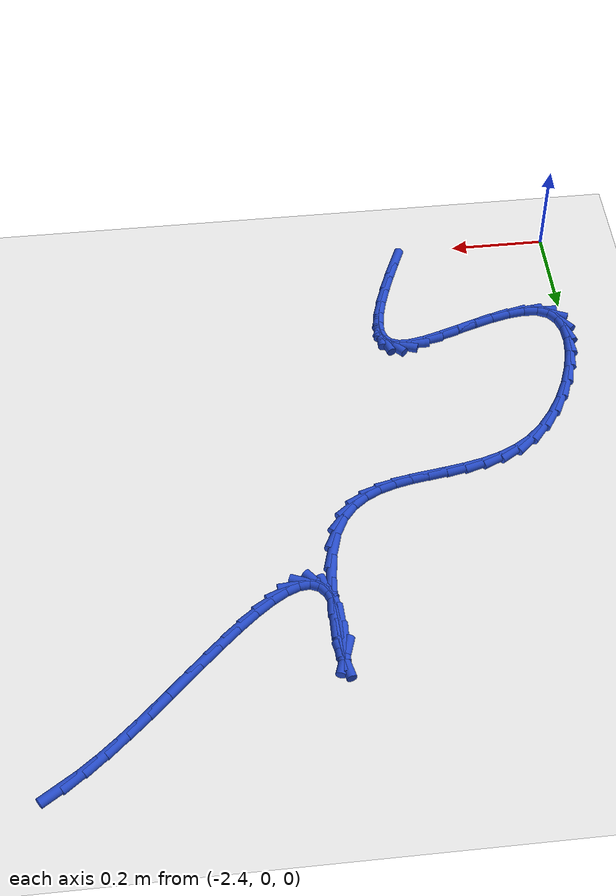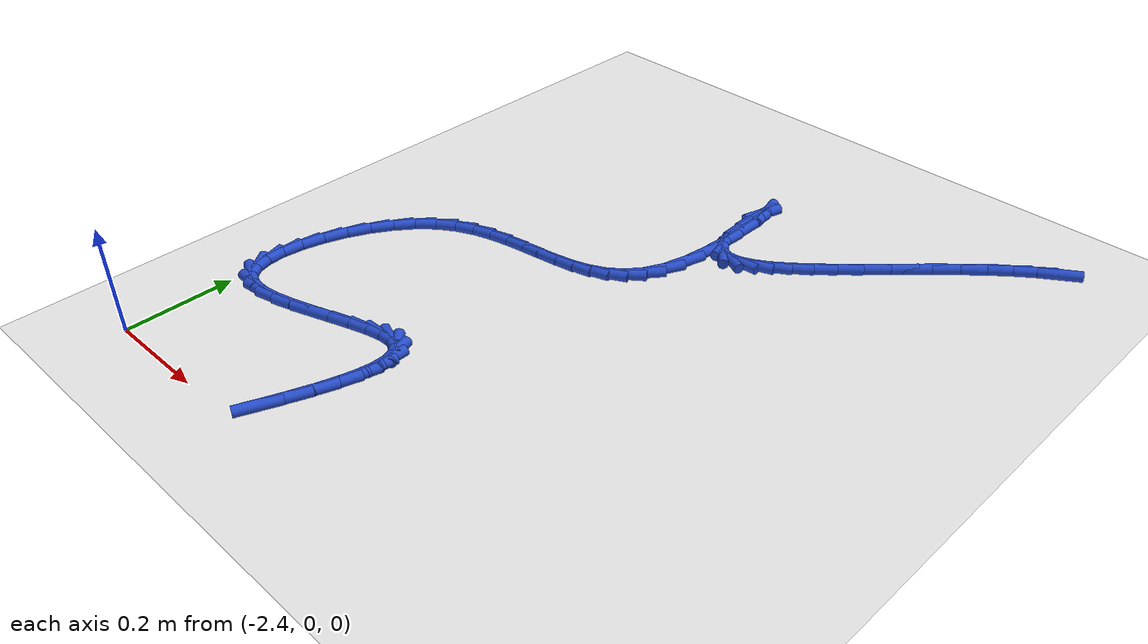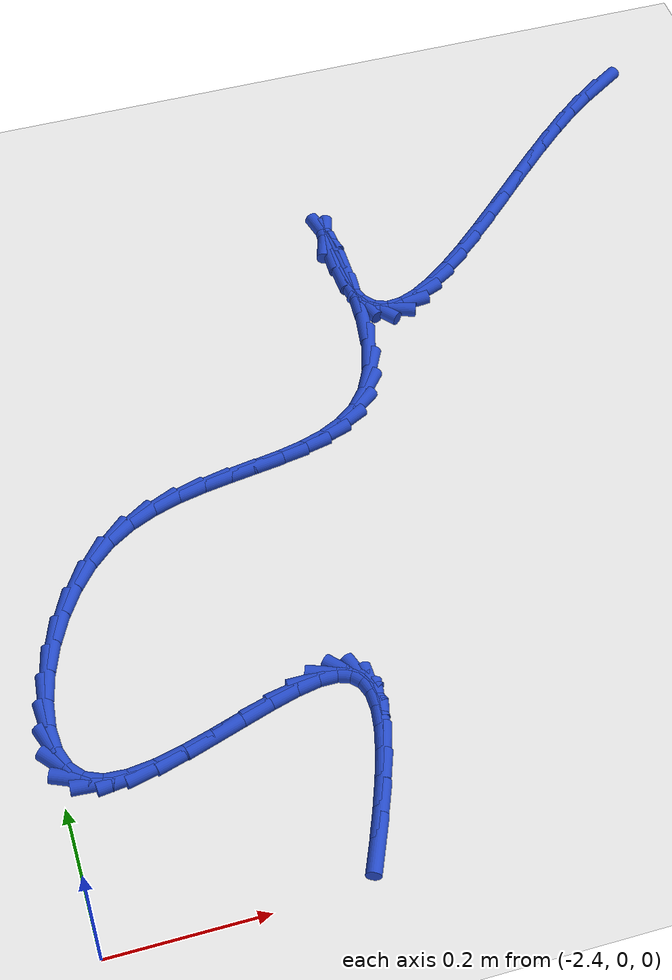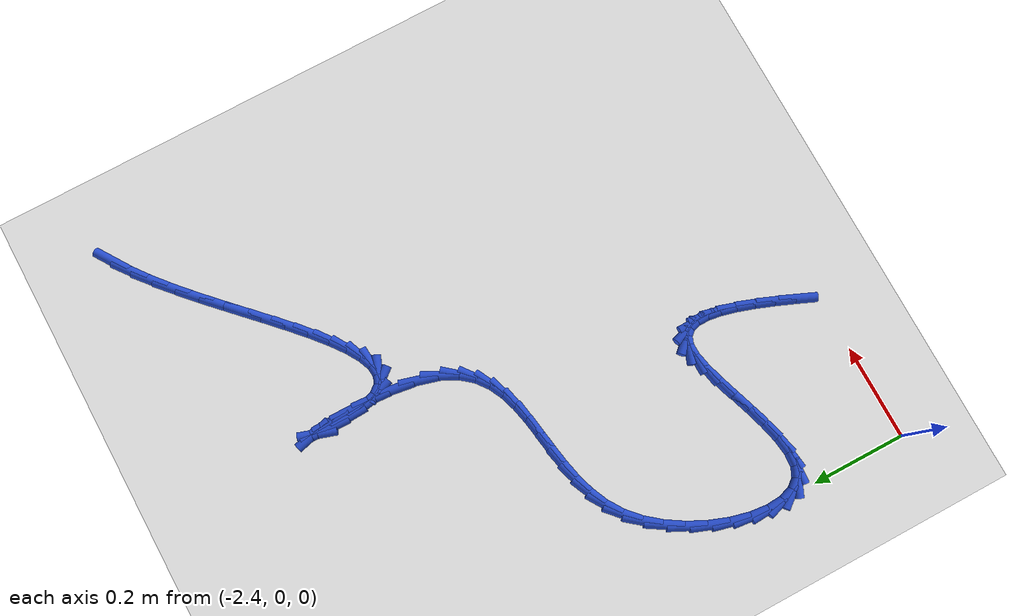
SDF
<sdf version="1.6">
 <world name="default">
  <model name="ground_plane">
   <static>1</static>
   <link name="link">
    <collision name="collision">
     <geometry><plane><normal>0 0 1</normal><size>100 100</size></plane></geometry>
     <surface><friction><ode><mu>100</mu><mu2>50</mu2></ode></friction></surface>
    </collision>
    <visual name="visual">
     <cast_shadows>0</cast_shadows>
     <geometry><plane><normal>0 0 1</normal><size>100 100</size></plane></geometry>
     <material>
      <script><uri>file://media/materials/scripts/gazebo.material</uri><name>Gazebo/WhiteGlow</name></script>
     </material>
    </visual>
   </link>
  </model>
  <model name="line">
   <link name="link_69">
    <pose>-1.3395759422812579 1.2230091711166013 0.01 0 1.57 0.581598620034394</pose>
    <collision name="collision">
     <geometry><cylinder><radius>0.01</radius><length>0.08</length></cylinder></geometry>
    </collision>
    <visual name="visual">
     <material>
      <script><name>Gazebo/Blue</name><uri>file://media/materials/scripts/gazebo.material</uri></script>
     </material>
     <geometry><cylinder><radius>0.01</radius><length>0.08</length></cylinder></geometry>
    </visual>
   </link>
   <link name="link_70">
    <pose>-1.3744132595093408 1.2001051794795756 0.01 0 1.57 0.654143767855493</pose>
    <collision name="collision">
     <geometry><cylinder><radius>0.01</radius><length>0.08</length></cylinder></geometry>
    </collision>
    <visual name="visual">
     <material>
      <script><name>Gazebo/Blue</name><uri>file://media/materials/scripts/gazebo.material</uri></script>
     </material>
     <geometry><cylinder><radius>0.01</radius><length>0.08</length></cylinder></geometry>
    </visual>
   </link>
   <link name="link_71">
    <pose>-1.410391941260637 1.1725180361301792 0.01 0 1.57 0.7042863489053723</pose>
    <collision name="collision">
     <geometry><cylinder><radius>0.01</radius><length>0.08</length></cylinder></geometry>
    </collision>
    <visual name="visual">
     <material>
      <script><name>Gazebo/Blue</name><uri>file://media/materials/scripts/gazebo.material</uri></script>
     </material>
     <geometry><cylinder><radius>0.01</radius><length>0.08</length></cylinder></geometry>
    </visual>
   </link>
   <link name="link_72">
    <pose>-1.4471560446689522 1.1412816997276407 0.01 0 1.57 0.7381925651348835</pose>
    <collision name="collision">
     <geometry><cylinder><radius>0.01</radius><length>0.08</length></cylinder></geometry>
    </collision>
    <visual name="visual">
     <material>
      <script><name>Gazebo/Blue</name><uri>file://media/materials/scripts/gazebo.material</uri></script>
     </material>
     <geometry><cylinder><radius>0.01</radius><length>0.08</length></cylinder></geometry>
    </visual>
   </link>
   <link name="link_73">
    <pose>-1.4843437562049615 1.1074490397835797 0.01 0 1.57 0.7596086856630443</pose>
    <collision name="collision">
     <geometry><cylinder><radius>0.01</radius><length>0.08</length></cylinder></geometry>
    </collision>
    <visual name="visual">
     <material>
      <script><name>Gazebo/Blue</name><uri>file://media/materials/scripts/gazebo.material</uri></script>
     </material>
     <geometry><cylinder><radius>0.01</radius><length>0.08</length></cylinder></geometry>
    </visual>
   </link>
   <link name="link_74">
    <pose>-1.52159326233934 1.0720729258096189 0.01 0 1.57 0.7705290940824102</pose>
    <collision name="collision">
     <geometry><cylinder><radius>0.01</radius><length>0.08</length></cylinder></geometry>
    </collision>
    <visual name="visual">
     <material>
      <script><name>Gazebo/Blue</name><uri>file://media/materials/scripts/gazebo.material</uri></script>
     </material>
     <geometry><cylinder><radius>0.01</radius><length>0.08</length></cylinder></geometry>
    </visual>
   </link>
   <link name="link_75">
    <pose>-1.5585427495427622 1.0362062273173764 0.01 0 1.57 0.7716650857625963</pose>
    <collision name="collision">
     <geometry><cylinder><radius>0.01</radius><length>0.08</length></cylinder></geometry>
    </collision>
    <visual name="visual">
     <material>
      <script><name>Gazebo/Blue</name><uri>file://media/materials/scripts/gazebo.material</uri></script>
     </material>
     <geometry><cylinder><radius>0.01</radius><length>0.08</length></cylinder></geometry>
    </visual>
   </link>
   <link name="link_76">
    <pose>-1.5948304042859038 1.000901813818474 0.01 0 1.57 0.7625642047551838</pose>
    <collision name="collision">
     <geometry><cylinder><radius>0.01</radius><length>0.08</length></cylinder></geometry>
    </collision>
    <visual name="visual">
     <material>
      <script><name>Gazebo/Blue</name><uri>file://media/materials/scripts/gazebo.material</uri></script>
     </material>
     <geometry><cylinder><radius>0.01</radius><length>0.08</length></cylinder></geometry>
    </visual>
   </link>
   <link name="link_77">
    <pose>-1.6300944130394397 0.9672125548245311 0.01 0 1.57 0.7414000162682713</pose>
    <collision name="collision">
     <geometry><cylinder><radius>0.01</radius><length>0.08</length></cylinder></geometry>
    </collision>
    <visual name="visual">
     <material>
      <script><name>Gazebo/Blue</name><uri>file://media/materials/scripts/gazebo.material</uri></script>
     </material>
     <geometry><cylinder><radius>0.01</radius><length>0.08</length></cylinder></geometry>
    </visual>
   </link>
   <link name="link_78">
    <pose>-1.6639729622740456 0.9361913198471674 0.01 0 1.57 0.7042908837811375</pose>
    <collision name="collision">
     <geometry><cylinder><radius>0.01</radius><length>0.08</length></cylinder></geometry>
    </collision>
    <visual name="visual">
     <material>
      <script><name>Gazebo/Blue</name><uri>file://media/materials/scripts/gazebo.material</uri></script>
     </material>
     <geometry><cylinder><radius>0.01</radius><length>0.08</length></cylinder></geometry>
    </visual>
   </link>
   <link name="link_79">
    <pose>-1.6961042384603948 0.9088909783980047 0.01 0 1.57 0.6437128908015034</pose>
    <collision name="collision">
     <geometry><cylinder><radius>0.01</radius><length>0.08</length></cylinder></geometry>
    </collision>
    <visual name="visual">
     <material>
      <script><name>Gazebo/Blue</name><uri>file://media/materials/scripts/gazebo.material</uri></script>
     </material>
     <geometry><cylinder><radius>0.01</radius><length>0.08</length></cylinder></geometry>
    </visual>
   </link>
   <link name="link_80">
    <pose>-1.7261264280691635 0.8863643999886628 0.01 0 1.57 0.5449221713800344</pose>
    <collision name="collision">
     <geometry><cylinder><radius>0.01</radius><length>0.08</length></cylinder></geometry>
    </collision>
    <visual name="visual">
     <material>
      <script><name>Gazebo/Blue</name><uri>file://media/materials/scripts/gazebo.material</uri></script>
     </material>
     <geometry><cylinder><radius>0.01</radius><length>0.08</length></cylinder></geometry>
    </visual>
   </link>
   <link name="link_81">
    <pose>-1.753677717571026 0.8696644541307612 0.01 0 1.57 0.3781680168652782</pose>
    <collision name="collision">
     <geometry><cylinder><radius>0.01</radius><length>0.08</length></cylinder></geometry>
    </collision>
    <visual name="visual">
     <material>
      <script><name>Gazebo/Blue</name><uri>file://media/materials/scripts/gazebo.material</uri></script>
     </material>
     <geometry><cylinder><radius>0.01</radius><length>0.08</length></cylinder></geometry>
    </visual>
   </link>
   <link name="link_82">
    <pose>-1.7783962934366588 0.859844010335921 0.01 0 1.57 0.08749523811681502</pose>
    <collision name="collision">
     <geometry><cylinder><radius>0.01</radius><length>0.08</length></cylinder></geometry>
    </collision>
    <visual name="visual">
     <material>
      <script><name>Gazebo/Blue</name><uri>file://media/materials/scripts/gazebo.material</uri></script>
     </material>
     <geometry><cylinder><radius>0.01</radius><length>0.08</length></cylinder></geometry>
    </visual>
   </link>
   <link name="link_83">
    <pose>-1.7999203421367354 0.857955938115762 0.01 0 1.57 -0.37618496554673475</pose>
    <collision name="collision">
     <geometry><cylinder><radius>0.01</radius><length>0.08</length></cylinder></geometry>
    </collision>
    <visual name="visual">
     <material>
      <script><name>Gazebo/Blue</name><uri>file://media/materials/scripts/gazebo.material</uri></script>
     </material>
     <geometry><cylinder><radius>0.01</radius><length>0.08</length></cylinder></geometry>
    </visual>
   </link>
   <link name="link_84">
    <pose>-1.8178880501419314 0.865053106981905 0.01 0 1.57 -0.8840266733961968</pose>
    <collision name="collision">
     <geometry><cylinder><radius>0.01</radius><length>0.08</length></cylinder></geometry>
    </collision>
    <visual name="visual">
     <material>
      <script><name>Gazebo/Blue</name><uri>file://media/materials/scripts/gazebo.material</uri></script>
     </material>
     <geometry><cylinder><radius>0.01</radius><length>0.08</length></cylinder></geometry>
    </visual>
   </link>
   <link name="link_85">
    <pose>-1.8319376039229216 0.8821883864459699 0.01 0 1.57 -1.2375850010433591</pose>
    <collision name="collision">
     <geometry><cylinder><radius>0.01</radius><length>0.08</length></cylinder></geometry>
    </collision>
    <visual name="visual">
     <material>
      <script><name>Gazebo/Blue</name><uri>file://media/materials/scripts/gazebo.material</uri></script>
     </material>
     <geometry><cylinder><radius>0.01</radius><length>0.08</length></cylinder></geometry>
    </visual>
   </link>
   <link name="link_86">
    <pose>-1.8417071899503812 0.9104146460195766 0.01 0 1.57 -1.4332159960289286</pose>
    <collision name="collision">
     <geometry><cylinder><radius>0.01</radius><length>0.08</length></cylinder></geometry>
    </collision>
    <visual name="visual">
     <material>
      <script><name>Gazebo/Blue</name><uri>file://media/materials/scripts/gazebo.material</uri></script>
     </material>
     <geometry><cylinder><radius>0.01</radius><length>0.08</length></cylinder></geometry>
    </visual>
   </link>
   <link name="link_87">
    <pose>-1.8470395475217911 0.9489279332825594 0.01 0 1.57 -1.5285767104417183</pose>
    <collision name="collision">
     <geometry><cylinder><radius>0.01</radius><length>0.08</length></cylinder></geometry>
    </collision>
    <visual name="visual">
     <material>
      <script><name>Gazebo/Blue</name><uri>file://media/materials/scripts/gazebo.material</uri></script>
     </material>
     <geometry><cylinder><radius>0.01</radius><length>0.08</length></cylinder></geometry>
    </visual>
   </link>
   <link name="link_88">
    <pose>-1.8487096513174754 0.9884619580827928 0.01 0 1.57 1.5378519541735132</pose>
    <collision name="collision">
     <geometry><cylinder><radius>0.01</radius><length>0.08</length></cylinder></geometry>
    </collision>
    <visual name="visual">
     <material>
      <script><name>Gazebo/Blue</name><uri>file://media/materials/scripts/gazebo.material</uri></script>
     </material>
     <geometry><cylinder><radius>0.01</radius><length>0.08</length></cylinder></geometry>
    </visual>
   </link>
   <link name="link_89">
    <pose>-1.847757904752156 1.0173410091760497 0.01 0 1.57 1.2605502210102155</pose>
    <collision name="collision">
     <geometry><cylinder><radius>0.01</radius><length>0.08</length></cylinder></geometry>
    </collision>
    <visual name="visual">
     <material>
      <script><name>Gazebo/Blue</name><uri>file://media/materials/scripts/gazebo.material</uri></script>
     </material>
     <geometry><cylinder><radius>0.01</radius><length>0.08</length></cylinder></geometry>
    </visual>
   </link>
   <link name="link_90">
    <pose>-1.8452135670276113 1.0252772118353553 0.01 0 1.57 -1.3308896369969707</pose>
    <collision name="collision">
     <geometry><cylinder><radius>0.01</radius><length>0.08</length></cylinder></geometry>
    </collision>
    <visual name="visual">
     <material>
      <script><name>Gazebo/Blue</name><uri>file://media/materials/scripts/gazebo.material</uri></script>
     </material>
     <geometry><cylinder><radius>0.01</radius><length>0.08</length></cylinder></geometry>
    </visual>
   </link>
   <link name="link_91">
    <pose>-1.842023433595842 1.0122359149899585 0.01 0 1.57 -1.4717968978037856</pose>
    <collision name="collision">
     <geometry><cylinder><radius>0.01</radius><length>0.08</length></cylinder></geometry>
    </collision>
    <visual name="visual">
     <material>
      <script><name>Gazebo/Blue</name><uri>file://media/materials/scripts/gazebo.material</uri></script>
     </material>
     <geometry><cylinder><radius>0.01</radius><length>0.08</length></cylinder></geometry>
    </visual>
   </link>
   <link name="link_92">
    <pose>-1.8390973552706258 0.9827760209738468 0.01 0 1.57 -1.5283899791265068</pose>
    <collision name="collision">
     <geometry><cylinder><radius>0.01</radius><length>0.08</length></cylinder></geometry>
    </collision>
    <visual name="visual">
     <material>
      <script><name>Gazebo/Blue</name><uri>file://media/materials/scripts/gazebo.material</uri></script>
     </material>
     <geometry><cylinder><radius>0.01</radius><length>0.08</length></cylinder></geometry>
    </visual>
   </link>
   <link name="link_93">
    <pose>-1.8373450089381635 0.9414780576033253 0.01 0 1.57 1.563978203554588</pose>
    <collision name="collision">
     <geometry><cylinder><radius>0.01</radius><length>0.08</length></cylinder></geometry>
    </collision>
    <visual name="visual">
     <material>
      <script><name>Gazebo/Blue</name><uri>file://media/materials/scripts/gazebo.material</uri></script>
     </material>
     <geometry><cylinder><radius>0.01</radius><length>0.08</length></cylinder></geometry>
    </visual>
   </link>
   <link name="link_94">
    <pose>-1.8376760714846552 0.8929225526946992 0.01 0 1.57 1.5060035858477105</pose>
    <collision name="collision">
     <geometry><cylinder><radius>0.01</radius><length>0.08</length></cylinder></geometry>
    </collision>
    <visual name="visual">
     <material>
      <script><name>Gazebo/Blue</name><uri>file://media/materials/scripts/gazebo.material</uri></script>
     </material>
     <geometry><cylinder><radius>0.01</radius><length>0.08</length></cylinder></geometry>
    </visual>
   </link>
   <link name="link_95">
    <pose>-1.8410002197963 0.841690034064272 0.01 0 1.57 1.4253269037329528</pose>
    <collision name="collision">
     <geometry><cylinder><radius>0.01</radius><length>0.08</length></cylinder></geometry>
    </collision>
    <visual name="visual">
     <material>
      <script><name>Gazebo/Blue</name><uri>file://media/materials/scripts/gazebo.material</uri></script>
     </material>
     <geometry><cylinder><radius>0.01</radius><length>0.08</length></cylinder></geometry>
    </visual>
   </link>
   <link name="link_96">
    <pose>-1.8482271307592992 0.7923610295283504 0.01 0 1.57 1.297404587484067</pose>
    <collision name="collision">
     <geometry><cylinder><radius>0.01</radius><length>0.08</length></cylinder></geometry>
    </collision>
    <visual name="visual">
     <material>
      <script><name>Gazebo/Blue</name><uri>file://media/materials/scripts/gazebo.material</uri></script>
     </material>
     <geometry><cylinder><radius>0.01</radius><length>0.08</length></cylinder></geometry>
    </visual>
   </link>
   <link name="link_97">
    <pose>-1.8602544244346864 0.7494696909241697 0.01 0 1.57 1.1060503976667138</pose>
    <collision name="collision">
     <geometry><cylinder><radius>0.01</radius><length>0.08</length></cylinder></geometry>
    </collision>
    <visual name="visual">
     <material>
      <script><name>Gazebo/Blue</name><uri>file://media/materials/scripts/gazebo.material</uri></script>
     </material>
     <geometry><cylinder><radius>0.01</radius><length>0.08</length></cylinder></geometry>
    </visual>
   </link>
   <link name="link_98">
    <pose>-1.877391814306079 0.7152888166437574 0.01 0 1.57 0.8830261197430366</pose>
    <collision name="collision">
     <geometry><cylinder><radius>0.01</radius><length>0.08</length></cylinder></geometry>
    </collision>
    <visual name="visual">
     <material>
      <script><name>Gazebo/Blue</name><uri>file://media/materials/scripts/gazebo.material</uri></script>
     </material>
     <geometry><cylinder><radius>0.01</radius><length>0.08</length></cylinder></geometry>
    </visual>
   </link>
   <link name="link_99">
    <pose>-1.8991081514387607 0.688856869557654 0.01 0 1.57 0.6587337448262415</pose>
    <collision name="collision">
     <geometry><cylinder><radius>0.01</radius><length>0.08</length></cylinder></geometry>
    </collision>
    <visual name="visual">
     <material>
      <script><name>Gazebo/Blue</name><uri>file://media/materials/scripts/gazebo.material</uri></script>
     </material>
     <geometry><cylinder><radius>0.01</radius><length>0.08</length></cylinder></geometry>
    </visual>
   </link>
   <link name="link_100">
    <pose>-1.9248075991160627 0.6689634941965531 0.01 0 1.57 0.46424697026245143</pose>
    <collision name="collision">
     <geometry><cylinder><radius>0.01</radius><length>0.08</length></cylinder></geometry>
    </collision>
    <visual name="visual">
     <material>
      <script><name>Gazebo/Blue</name><uri>file://media/materials/scripts/gazebo.material</uri></script>
     </material>
     <geometry><cylinder><radius>0.01</radius><length>0.08</length></cylinder></geometry>
    </visual>
   </link>
   <link name="link_101">
    <pose>-1.953894320621316 0.654398335091149 0.01 0 1.57 0.3166954061800554</pose>
    <collision name="collision">
     <geometry><cylinder><radius>0.01</radius><length>0.08</length></cylinder></geometry>
    </collision>
    <visual name="visual">
     <material>
      <script><name>Gazebo/Blue</name><uri>file://media/materials/scripts/gazebo.material</uri></script>
     </material>
     <geometry><cylinder><radius>0.01</radius><length>0.08</length></cylinder></geometry>
    </visual>
   </link>
   <link name="link_102">
    <pose>-1.9857724792378535 0.6439510367721352 0.01 0 1.57 0.21776953065199053</pose>
    <collision name="collision">
     <geometry><cylinder><radius>0.01</radius><length>0.08</length></cylinder></geometry>
    </collision>
    <visual name="visual">
     <material>
      <script><name>Gazebo/Blue</name><uri>file://media/materials/scripts/gazebo.material</uri></script>
     </material>
     <geometry><cylinder><radius>0.01</radius><length>0.08</length></cylinder></geometry>
    </visual>
   </link>
   <link name="link_103">
    <pose>-2.0198462382490057 0.6364112437702055 0.01 0 1.57 0.16233963828684303</pose>
    <collision name="collision">
     <geometry><cylinder><radius>0.01</radius><length>0.08</length></cylinder></geometry>
    </collision>
    <visual name="visual">
     <material>
      <script><name>Gazebo/Blue</name><uri>file://media/materials/scripts/gazebo.material</uri></script>
     </material>
     <geometry><cylinder><radius>0.01</radius><length>0.08</length></cylinder></geometry>
    </visual>
   </link>
   <link name="link_104">
    <pose>-2.0555197609381053 0.6305686006160536 0.01 0 1.57 0.14500081418480712</pose>
    <collision name="collision">
     <geometry><cylinder><radius>0.01</radius><length>0.08</length></cylinder></geometry>
    </collision>
    <visual name="visual">
     <material>
      <script><name>Gazebo/Blue</name><uri>file://media/materials/scripts/gazebo.material</uri></script>
     </material>
     <geometry><cylinder><radius>0.01</radius><length>0.08</length></cylinder></geometry>
    </visual>
   </link>
   <link name="link_105">
    <pose>-2.0921972105884836 0.6252127518403734 0.01 0 1.57 0.1624842030469714</pose>
    <collision name="collision">
     <geometry><cylinder><radius>0.01</radius><length>0.08</length></cylinder></geometry>
    </collision>
    <visual name="visual">
     <material>
      <script><name>Gazebo/Blue</name><uri>file://media/materials/scripts/gazebo.material</uri></script>
     </material>
     <geometry><cylinder><radius>0.01</radius><length>0.08</length></cylinder></geometry>
    </visual>
   </link>
   <link name="link_106">
    <pose>-2.1292827504834713 0.6191333419738587 0.01 0 1.57 0.2138553768927613</pose>
    <collision name="collision">
     <geometry><cylinder><radius>0.01</radius><length>0.08</length></cylinder></geometry>
    </collision>
    <visual name="visual">
     <material>
      <script><name>Gazebo/Blue</name><uri>file://media/materials/scripts/gazebo.material</uri></script>
     </material>
     <geometry><cylinder><radius>0.01</radius><length>0.08</length></cylinder></geometry>
    </visual>
   </link>
   <link name="link_107">
    <pose>-2.1661805439064015 0.6111200155472035 0.01 0 1.57 0.29965030547115173</pose>
    <collision name="collision">
     <geometry><cylinder><radius>0.01</radius><length>0.08</length></cylinder></geometry>
    </collision>
    <visual name="visual">
     <material>
      <script><name>Gazebo/Blue</name><uri>file://media/materials/scripts/gazebo.material</uri></script>
     </material>
     <geometry><cylinder><radius>0.01</radius><length>0.08</length></cylinder></geometry>
    </visual>
   </link>
   <link name="link_108">
    <pose>-2.202294754140605 0.5999624170911012 0.01 0 1.57 0.42001493426136594</pose>
    <collision name="collision">
     <geometry><cylinder><radius>0.01</radius><length>0.08</length></cylinder></geometry>
    </collision>
    <visual name="visual">
     <material>
      <script><name>Gazebo/Blue</name><uri>file://media/materials/scripts/gazebo.material</uri></script>
     </material>
     <geometry><cylinder><radius>0.01</radius><length>0.08</length></cylinder></geometry>
    </visual>
   </link>
   <link name="link_109">
    <pose>-2.2370295444694146 0.5844501911362456 0.01 0 1.57 0.5717155622475436</pose>
    <collision name="collision">
     <geometry><cylinder><radius>0.01</radius><length>0.08</length></cylinder></geometry>
    </collision>
    <visual name="visual">
     <material>
      <script><name>Gazebo/Blue</name><uri>file://media/materials/scripts/gazebo.material</uri></script>
     </material>
     <geometry><cylinder><radius>0.01</radius><length>0.08</length></cylinder></geometry>
    </visual>
   </link>
   <link name="link_110">
    <pose>-2.2697890781761605 0.5633729822133311 0.01 0 1.57 0.7412031184496326</pose>
    <collision name="collision">
     <geometry><cylinder><radius>0.01</radius><length>0.08</length></cylinder></geometry>
    </collision>
    <visual name="visual">
     <material>
      <script><name>Gazebo/Blue</name><uri>file://media/materials/scripts/gazebo.material</uri></script>
     </material>
     <geometry><cylinder><radius>0.01</radius><length>0.08</length></cylinder></geometry>
    </visual>
   </link>
   <link name="link_111">
    <pose>-2.299984813947602 0.535734880881286 0.01 0 1.57 0.8892888538486003</pose>
    <collision name="collision">
     <geometry><cylinder><radius>0.01</radius><length>0.08</length></cylinder></geometry>
    </collision>
    <visual name="visual">
     <material>
      <script><name>Gazebo/Blue</name><uri>file://media/materials/scripts/gazebo.material</uri></script>
     </material>
     <geometry><cylinder><radius>0.01</radius><length>0.08</length></cylinder></geometry>
    </visual>
   </link>
   <link name="link_112">
    <pose>-2.327088797999077 0.502320928539127 0.01 0 1.57 1.0109994120340056</pose>
    <collision name="collision">
     <geometry><cylinder><radius>0.01</radius><length>0.08</length></cylinder></geometry>
    </collision>
    <visual name="visual">
     <material>
      <script><name>Gazebo/Blue</name><uri>file://media/materials/scripts/gazebo.material</uri></script>
     </material>
     <geometry><cylinder><radius>0.01</radius><length>0.08</length></cylinder></geometry>
    </visual>
   </link>
   <link name="link_113">
    <pose>-2.350603080944833 0.46479813620408805 0.01 0 1.57 1.1182674748606314</pose>
    <collision name="collision">
     <geometry><cylinder><radius>0.01</radius><length>0.08</length></cylinder></geometry>
    </collision>
    <visual name="visual">
     <material>
      <script><name>Gazebo/Blue</name><uri>file://media/materials/scripts/gazebo.material</uri></script>
     </material>
     <geometry><cylinder><radius>0.01</radius><length>0.08</length></cylinder></geometry>
    </visual>
   </link>
   <link name="link_114">
    <pose>-2.3700299279222423 0.42483982073146787 0.01 0 1.57 1.221283442414813</pose>
    <collision name="collision">
     <geometry><cylinder><radius>0.01</radius><length>0.08</length></cylinder></geometry>
    </collision>
    <visual name="visual">
     <material>
      <script><name>Gazebo/Blue</name><uri>file://media/materials/scripts/gazebo.material</uri></script>
     </material>
     <geometry><cylinder><radius>0.01</radius><length>0.08</length></cylinder></geometry>
    </visual>
   </link>
   <link name="link_115">
    <pose>-2.3848716040686813 0.38411929897656416 0.01 0 1.57 1.330399559390433</pose>
    <collision name="collision">
     <geometry><cylinder><radius>0.01</radius><length>0.08</length></cylinder></geometry>
    </collision>
    <visual name="visual">
     <material>
      <script><name>Gazebo/Blue</name><uri>file://media/materials/scripts/gazebo.material</uri></script>
     </material>
     <geometry><cylinder><radius>0.01</radius><length>0.08</length></cylinder></geometry>
    </visual>
   </link>
   <link name="link_116">
    <pose>-2.3946303745215234 0.3443098877946748 0.01 0 1.57 1.4590241827650032</pose>
    <collision name="collision">
     <geometry><cylinder><radius>0.01</radius><length>0.08</length></cylinder></geometry>
    </collision>
    <visual name="visual">
     <material>
      <script><name>Gazebo/Blue</name><uri>file://media/materials/scripts/gazebo.material</uri></script>
     </material>
     <geometry><cylinder><radius>0.01</radius><length>0.08</length></cylinder></geometry>
    </visual>
   </link>
   <link name="link_117">
    <pose>-2.398808504418146 0.3070849040410972 0.01 0 1.57 -1.5132196152473674</pose>
    <collision name="collision">
     <geometry><cylinder><radius>0.01</radius><length>0.08</length></cylinder></geometry>
    </collision>
    <visual name="visual">
     <material>
      <script><name>Gazebo/Blue</name><uri>file://media/materials/scripts/gazebo.material</uri></script>
     </material>
     <geometry><cylinder><radius>0.01</radius><length>0.08</length></cylinder></geometry>
    </visual>
   </link>
   <link name="link_118">
    <pose>-2.3969082588959214 0.27411766457113057 0.01 0 1.57 -1.2669833792333474</pose>
    <collision name="collision">
     <geometry><cylinder><radius>0.01</radius><length>0.08</length></cylinder></geometry>
    </collision>
    <visual name="visual">
     <material>
      <script><name>Gazebo/Blue</name><uri>file://media/materials/scripts/gazebo.material</uri></script>
     </material>
     <geometry><cylinder><radius>0.01</radius><length>0.08</length></cylinder></geometry>
    </visual>
   </link>
   <link name="link_119">
    <pose>-2.3884319030922248 0.24708148624007215 0.01 0 1.57 -0.8959060157181908</pose>
    <collision name="collision">
     <geometry><cylinder><radius>0.01</radius><length>0.08</length></cylinder></geometry>
    </collision>
    <visual name="visual">
     <material>
      <script><name>Gazebo/Blue</name><uri>file://media/materials/scripts/gazebo.material</uri></script>
     </material>
     <geometry><cylinder><radius>0.01</radius><length>0.08</length></cylinder></geometry>
    </visual>
   </link>
   <link name="link_120">
    <pose>-2.372881702144431 0.22764968590321993 0.01 0 1.57 -0.4258053115099146</pose>
    <collision name="collision">
     <geometry><cylinder><radius>0.01</radius><length>0.08</length></cylinder></geometry>
    </collision>
    <visual name="visual">
     <material>
      <script><name>Gazebo/Blue</name><uri>file://media/materials/scripts/gazebo.material</uri></script>
     </material>
     <geometry><cylinder><radius>0.01</radius><length>0.08</length></cylinder></geometry>
    </visual>
   </link>
   <link name="link_121">
    <pose>-2.34991740350821 0.2172341416565316 0.01 0 1.57 -0.07214879053017326</pose>
    <collision name="collision">
     <geometry><cylinder><radius>0.01</radius><length>0.08</length></cylinder></geometry>
    </collision>
    <visual name="visual">
     <material>
      <script><name>Gazebo/Blue</name><uri>file://media/materials/scripts/gazebo.material</uri></script>
     </material>
     <geometry><cylinder><radius>0.01</radius><length>0.08</length></cylinder></geometry>
    </visual>
   </link>
   <link name="link_122">
    <pose>-2.32048758563885 0.21510712391692274 0.01 0 1.57 0.1271551483687583</pose>
    <collision name="collision">
     <geometry><cylinder><radius>0.01</radius><length>0.08</length></cylinder></geometry>
    </collision>
    <visual name="visual">
     <material>
      <script><name>Gazebo/Blue</name><uri>file://media/materials/scripts/gazebo.material</uri></script>
     </material>
     <geometry><cylinder><radius>0.01</radius><length>0.08</length></cylinder></geometry>
    </visual>
   </link>
   <link name="link_123">
    <pose>-2.2861712732778745 0.21949428976282 0.01 0 1.57 0.23783584993303322</pose>
    <collision name="collision">
     <geometry><cylinder><radius>0.01</radius><length>0.08</length></cylinder></geometry>
    </collision>
    <visual name="visual">
     <material>
      <script><name>Gazebo/Blue</name><uri>file://media/materials/scripts/gazebo.material</uri></script>
     </material>
     <geometry><cylinder><radius>0.01</radius><length>0.08</length></cylinder></geometry>
    </visual>
   </link>
   <link name="link_124">
    <pose>-2.2485517888052033 0.2286141616986722 0.01 0 1.57 0.2977252436663584</pose>
    <collision name="collision">
     <geometry><cylinder><radius>0.01</radius><length>0.08</length></cylinder></geometry>
    </collision>
    <visual name="visual">
     <material>
      <script><name>Gazebo/Blue</name><uri>file://media/materials/scripts/gazebo.material</uri></script>
     </material>
     <geometry><cylinder><radius>0.01</radius><length>0.08</length></cylinder></geometry>
    </visual>
   </link>
   <link name="link_125">
    <pose>-2.2092124546007557 0.24068526222892836 0.01 0 1.57 0.3236241472583706</pose>
    <collision name="collision">
     <geometry><cylinder><radius>0.01</radius><length>0.08</length></cylinder></geometry>
    </collision>
    <visual name="visual">
     <material>
      <script><name>Gazebo/Blue</name><uri>file://media/materials/scripts/gazebo.material</uri></script>
     </material>
     <geometry><cylinder><radius>0.01</radius><length>0.08</length></cylinder></geometry>
    </visual>
   </link>
   <link name="link_126">
    <pose>-2.1697365930444508 0.25392611385803765 0.01 0 1.57 0.3206323814054234</pose>
    <collision name="collision">
     <geometry><cylinder><radius>0.01</radius><length>0.08</length></cylinder></geometry>
    </collision>
    <visual name="visual">
     <material>
      <script><name>Gazebo/Blue</name><uri>file://media/materials/scripts/gazebo.material</uri></script>
     </material>
     <geometry><cylinder><radius>0.01</radius><length>0.08</length></cylinder></geometry>
    </visual>
   </link>
   <link name="link_127">
    <pose>-2.131707526516209 0.2665552390904484 0.01 0 1.57 0.2845284761900401</pose>
    <collision name="collision">
     <geometry><cylinder><radius>0.01</radius><length>0.08</length></cylinder></geometry>
    </collision>
    <visual name="visual">
     <material>
      <script><name>Gazebo/Blue</name><uri>file://media/materials/scripts/gazebo.material</uri></script>
     </material>
     <geometry><cylinder><radius>0.01</radius><length>0.08</length></cylinder></geometry>
    </visual>
   </link>
   <link name="link_128">
    <pose>-2.096708577395948 0.2767911604306099 0.01 0 1.57 0.19689356495776075</pose>
    <collision name="collision">
     <geometry><cylinder><radius>0.01</radius><length>0.08</length></cylinder></geometry>
    </collision>
    <visual name="visual">
     <material>
      <script><name>Gazebo/Blue</name><uri>file://media/materials/scripts/gazebo.material</uri></script>
     </material>
     <geometry><cylinder><radius>0.01</radius><length>0.08</length></cylinder></geometry>
    </visual>
   </link>
   <link name="link_129">
    <pose>-2.066323068063588 0.28285240038297105 0.01 0 1.57 0.006026627191093933</pose>
    <collision name="collision">
     <geometry><cylinder><radius>0.01</radius><length>0.08</length></cylinder></geometry>
    </collision>
    <visual name="visual">
     <material>
      <script><name>Gazebo/Blue</name><uri>file://media/materials/scripts/gazebo.material</uri></script>
     </material>
     <geometry><cylinder><radius>0.01</radius><length>0.08</length></cylinder></geometry>
    </visual>
   </link>
   <link name="link_130">
    <pose>-2.042095968294351 0.28299840984890534 0.01 0 1.57 -0.35321996506380643</pose>
    <collision name="collision">
     <geometry><cylinder><radius>0.01</radius><length>0.08</length></cylinder></geometry>
    </collision>
    <visual name="visual">
     <material>
      <script><name>Gazebo/Blue</name><uri>file://media/materials/scripts/gazebo.material</uri></script>
     </material>
     <geometry><cylinder><radius>0.01</radius><length>0.08</length></cylinder></geometry>
    </visual>
   </link>
   <link name="link_131">
    <pose>-2.0245848312219468 0.27654237207867594 0.01 0 1.57 -0.8412670174556948</pose>
    <collision name="collision">
     <geometry><cylinder><radius>0.01</radius><length>0.08</length></cylinder></geometry>
    </collision>
    <visual name="visual">
     <material>
      <script><name>Gazebo/Blue</name><uri>file://media/materials/scripts/gazebo.material</uri></script>
     </material>
     <geometry><cylinder><radius>0.01</radius><length>0.08</length></cylinder></geometry>
    </visual>
   </link>
   <link name="link_132">
    <pose>-2.013297484436774 0.2639176962899241 0.01 0 1.57 -1.2735930728665577</pose>
    <collision name="collision">
     <geometry><cylinder><radius>0.01</radius><length>0.08</length></cylinder></geometry>
    </collision>
    <visual name="visual">
     <material>
      <script><name>Gazebo/Blue</name><uri>file://media/materials/scripts/gazebo.material</uri></script>
     </material>
     <geometry><cylinder><radius>0.01</radius><length>0.08</length></cylinder></geometry>
    </visual>
   </link>
   <link name="link_133">
    <pose>-2.0076909265145324 0.2456120344330914 0.01 0 1.57 -1.5508504398514777</pose>
    <collision name="collision">
     <geometry><cylinder><radius>0.01</radius><length>0.08</length></cylinder></geometry>
    </collision>
    <visual name="visual">
     <material>
      <script><name>Gazebo/Blue</name><uri>file://media/materials/scripts/gazebo.material</uri></script>
     </material>
     <geometry><cylinder><radius>0.01</radius><length>0.08</length></cylinder></geometry>
    </visual>
   </link>
   <link name="link_134">
    <pose>-2.0072221560309256 0.22211303845861935 0.01 0 1.57 1.4255383266569772</pose>
    <collision name="collision">
     <geometry><cylinder><radius>0.01</radius><length>0.08</length></cylinder></geometry>
    </collision>
    <visual name="visual">
     <material>
      <script><name>Gazebo/Blue</name><uri>file://media/materials/scripts/gazebo.material</uri></script>
     </material>
     <geometry><cylinder><radius>0.01</radius><length>0.08</length></cylinder></geometry>
    </visual>
   </link>
   <link name="link_135">
    <pose>-2.0113481715616546 0.19390836031694902 0.01 0 1.57 1.3237251521508464</pose>
    <collision name="collision">
     <geometry><cylinder><radius>0.01</radius><length>0.08</length></cylinder></geometry>
    </collision>
    <visual name="visual">
     <material>
      <script><name>Gazebo/Blue</name><uri>file://media/materials/scripts/gazebo.material</uri></script>
     </material>
     <geometry><cylinder><radius>0.01</radius><length>0.08</length></cylinder></geometry>
    </visual>
   </link>
   <link name="link_136">
    <pose>-2.01952597168242 0.1614856519585228 0.01 0 1.57 1.2581456010539973</pose>
    <collision name="collision">
     <geometry><cylinder><radius>0.01</radius><length>0.08</length></cylinder></geometry>
    </collision>
    <visual name="visual">
     <material>
      <script><name>Gazebo/Blue</name><uri>file://media/materials/scripts/gazebo.material</uri></script>
     </material>
     <geometry><cylinder><radius>0.01</radius><length>0.08</length></cylinder></geometry>
    </visual>
   </link>
   <link name="link_137">
    <pose>-2.0312125549689233 0.1253325653337816 0.01 0 1.57 1.2147225448768517</pose>
    <collision name="collision">
     <geometry><cylinder><radius>0.01</radius><length>0.08</length></cylinder></geometry>
    </collision>
    <visual name="visual">
     <material>
      <script><name>Gazebo/Blue</name><uri>file://media/materials/scripts/gazebo.material</uri></script>
     </material>
     <geometry><cylinder><radius>0.01</radius><length>0.08</length></cylinder></geometry>
    </visual>
   </link>
   <link name="link_138">
    <pose>-2.045864919996868 0.08593675239316739 0.01 0 1.57 1.185904794517803</pose>
    <collision name="collision">
     <geometry><cylinder><radius>0.01</radius><length>0.08</length></cylinder></geometry>
    </collision>
    <visual name="visual">
     <material>
      <script><name>Gazebo/Blue</name><uri>file://media/materials/scripts/gazebo.material</uri></script>
     </material>
     <geometry><cylinder><radius>0.01</radius><length>0.08</length></cylinder></geometry>
    </visual>
   </link>
   <link name="link_139">
    <pose>-2.0629400653419525 0.043785865087121234 0.01 0 1.57 1.1674555736508525</pose>
    <collision name="collision">
     <geometry><cylinder><radius>0.01</radius><length>0.08</length></cylinder></geometry>
    </collision>
    <visual name="visual">
     <material>
      <script><name>Gazebo/Blue</name><uri>file://media/materials/scripts/gazebo.material</uri></script>
     </material>
     <geometry><cylinder><radius>0.01</radius><length>0.08</length></cylinder></geometry>
    </visual>
   </link>
  </model>
 </world>
</sdf>
